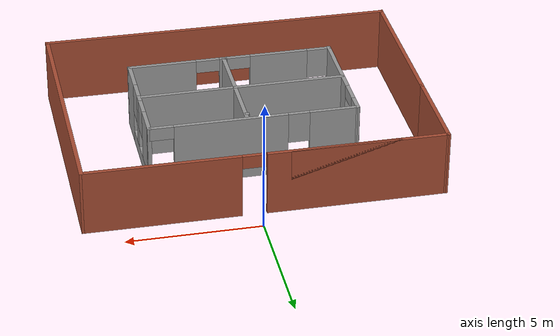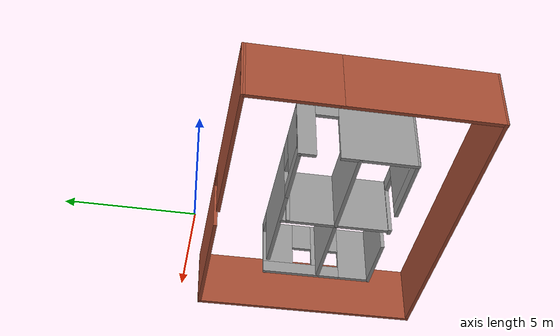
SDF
<?xml version='1.0'?>
<sdf version='1.6'>
  <model name='Building'>
    <pose frame=''>-0.30401 -5.55703 0 0 -0 0</pose>
    <link name='Wall_0'>
      <collision name='Wall_0_Collision'>
        <geometry>
          <box>
            <size>6.03913 0.15 2.5</size>
          </box>
        </geometry>
        <pose frame=''>0 0 1.25 0 -0 0</pose>
      </collision>
      <visual name='Wall_0_Visual'>
        <pose frame=''>0 0 1.25 0 -0 0</pose>
        <geometry>
          <box>
            <size>6.03913 0.15 2.5</size>
          </box>
        </geometry>
        <material>
          <script>
            <uri>file://media/materials/scripts/gazebo.material</uri>
            <name>Gazebo/Bricks</name>
          </script>
          <ambient>1 1 1 1</ambient>
        </material>
        <meta>
          <layer>0</layer>
        </meta>
      </visual>
      <pose frame=''>-6.63599 -1.70753 0 0 0 -1.5708</pose>
    </link>
    <link name='Wall_1'>
      <collision name='Wall_1_Collision'>
        <geometry>
          <box>
            <size>13.4097 0.15 2.5</size>
          </box>
        </geometry>
        <pose frame=''>0 0 1.25 0 -0 0</pose>
      </collision>
      <visual name='Wall_1_Visual'>
        <pose frame=''>0 0 1.25 0 -0 0</pose>
        <geometry>
          <box>
            <size>13.4097 0.15 2.5</size>
          </box>
        </geometry>
        <material>
          <script>
            <uri>file://media/materials/scripts/gazebo.material</uri>
            <name>Gazebo/Bricks</name>
          </script>
          <ambient>1 1 1 1</ambient>
        </material>
        <meta>
          <layer>0</layer>
        </meta>
      </visual>
      <pose frame=''>-0.006325 -4.68577 0 0 0 -0.007717</pose>
    </link>
    <link name='Wall_12'>
      <collision name='Wall_12_Collision'>
        <geometry>
          <box>
            <size>0.15 0.15 2.5</size>
          </box>
        </geometry>
        <pose frame=''>0 0 1.25 0 -0 0</pose>
      </collision>
      <visual name='Wall_12_Visual'>
        <pose frame=''>0 0 1.25 0 -0 0</pose>
        <geometry>
          <box>
            <size>0.15 0.15 2.5</size>
          </box>
        </geometry>
        <material>
          <script>
            <uri>file://media/materials/scripts/gazebo.material</uri>
            <name>Gazebo/Grey</name>
          </script>
          <ambient>1 1 1 1</ambient>
        </material>
        <meta>
          <layer>0</layer>
        </meta>
      </visual>
      <pose frame=''>0.155765 1.91213 0 0 -0 0</pose>
    </link>
    <link name='Wall_13'>
      <collision name='Wall_13_Collision'>
        <geometry>
          <box>
            <size>0.15 0.15 2.5</size>
          </box>
        </geometry>
        <pose frame=''>0 0 1.25 0 -0 0</pose>
      </collision>
      <visual name='Wall_13_Visual'>
        <pose frame=''>0 0 1.25 0 -0 0</pose>
        <geometry>
          <box>
            <size>0.15 0.15 2.5</size>
          </box>
        </geometry>
        <material>
          <script>
            <uri>file://media/materials/scripts/gazebo.material</uri>
            <name>Gazebo/Grey</name>
          </script>
          <ambient>1 1 1 1</ambient>
        </material>
        <meta>
          <layer>0</layer>
        </meta>
      </visual>
      <pose frame=''>0.155765 1.91213 0 0 -0 0</pose>
    </link>
    <link name='Wall_16'>
      <collision name='Wall_16_Collision'>
        <geometry>
          <box>
            <size>4.5 0.15 2.5</size>
          </box>
        </geometry>
        <pose frame=''>0 0 1.25 0 -0 0</pose>
      </collision>
      <visual name='Wall_16_Visual'>
        <pose frame=''>0 0 1.25 0 -0 0</pose>
        <geometry>
          <box>
            <size>4.5 0.15 2.5</size>
          </box>
        </geometry>
        <material>
          <script>
            <uri>file://media/materials/scripts/gazebo.material</uri>
            <name>Gazebo/Grey</name>
          </script>
          <ambient>1 1 1 1</ambient>
        </material>
        <meta>
          <layer>0</layer>
        </meta>
      </visual>
      <pose frame=''>0.209311 -0.044225 0 0 -0 1.5708</pose>
    </link>
    <link name='Wall_18'>
      <collision name='Wall_18_Collision'>
        <geometry>
          <box>
            <size>7.75 0.15 2.5</size>
          </box>
        </geometry>
        <pose frame=''>0 0 1.25 0 -0 0</pose>
      </collision>
      <visual name='Wall_18_Visual'>
        <pose frame=''>0 0 1.25 0 -0 0</pose>
        <geometry>
          <box>
            <size>7.75 0.15 2.5</size>
          </box>
        </geometry>
        <material>
          <script>
            <uri>file://media/materials/scripts/gazebo.material</uri>
            <name>Gazebo/Grey</name>
          </script>
          <ambient>1 1 1 1</ambient>
        </material>
        <meta>
          <layer>0</layer>
        </meta>
      </visual>
      <pose frame=''>-0.08044 -0.029696 0 0 -0 0</pose>
    </link>
    <link name='Wall_2'>
      <collision name='Wall_2_Collision'>
        <geometry>
          <box>
            <size>9.53913 0.15 2.5</size>
          </box>
        </geometry>
        <pose frame=''>0 0 1.25 0 -0 0</pose>
      </collision>
      <visual name='Wall_2_Visual'>
        <pose frame=''>0 0 1.25 0 -0 0</pose>
        <geometry>
          <box>
            <size>9.53913 0.15 2.5</size>
          </box>
        </geometry>
        <material>
          <script>
            <uri>file://media/materials/scripts/gazebo.material</uri>
            <name>Gazebo/Bricks</name>
          </script>
          <ambient>1 1 1 1</ambient>
        </material>
        <meta>
          <layer>0</layer>
        </meta>
      </visual>
      <pose frame=''>6.63657 -0.042371 0 0 -0 1.5708</pose>
    </link>
    <link name='Wall_3'>
      <pose frame=''>-0.006325 4.69461 0 0 -0 3.13519</pose>
      <visual name='Wall_3_Visual_0'>
        <pose frame=''>-3.80988 0 1.25 0 -0 0</pose>
        <geometry>
          <box>
            <size>5.78985 0.15 2.5</size>
          </box>
        </geometry>
        <material>
          <script>
            <uri>file://media/materials/scripts/gazebo.material</uri>
            <name>Gazebo/Bricks</name>
          </script>
          <ambient>1 1 1 1</ambient>
        </material>
        <meta>
          <layer>0</layer>
        </meta>
      </visual>
      <collision name='Wall_3_Collision_0'>
        <geometry>
          <box>
            <size>5.78985 0.15 2.5</size>
          </box>
        </geometry>
        <pose frame=''>-3.80988 0 1.25 0 -0 0</pose>
      </collision>
      <visual name='Wall_3_Visual_1'>
        <pose frame=''>3.34492 0 1.25 0 -0 0</pose>
        <geometry>
          <box>
            <size>6.71976 0.15 2.5</size>
          </box>
        </geometry>
        <material>
          <script>
            <uri>file://media/materials/scripts/gazebo.material</uri>
            <name>Gazebo/Bricks</name>
          </script>
          <ambient>1 1 1 1</ambient>
        </material>
        <meta>
          <layer>0</layer>
        </meta>
      </visual>
      <collision name='Wall_3_Collision_1'>
        <geometry>
          <box>
            <size>6.71976 0.15 2.5</size>
          </box>
        </geometry>
        <pose frame=''>3.34492 0 1.25 0 -0 0</pose>
      </collision>
      <visual name='Wall_3_Visual_2'>
        <pose frame=''>3.78107 0 1.25 0 -0 0</pose>
        <geometry>
          <box>
            <size>5.84745 0.15 2.5</size>
          </box>
        </geometry>
        <material>
          <script>
            <uri>file://media/materials/scripts/gazebo.material</uri>
            <name>Gazebo/Bricks</name>
          </script>
          <ambient>1 1 1 1</ambient>
        </material>
        <meta>
          <layer>0</layer>
        </meta>
      </visual>
      <collision name='Wall_3_Collision_2'>
        <geometry>
          <box>
            <size>5.84745 0.15 2.5</size>
          </box>
        </geometry>
        <pose frame=''>3.78107 0 1.25 0 -0 0</pose>
      </collision>
      <visual name='Wall_3_Visual_3'>
        <pose frame=''>-0.478802 0 2.25 0 -0 0</pose>
        <geometry>
          <box>
            <size>0.872303 0.15 0.5</size>
          </box>
        </geometry>
        <material>
          <script>
            <uri>file://media/materials/scripts/gazebo.material</uri>
            <name>Gazebo/Bricks</name>
          </script>
          <ambient>1 1 1 1</ambient>
        </material>
        <meta>
          <layer>0</layer>
        </meta>
      </visual>
      <collision name='Wall_3_Collision_3'>
        <geometry>
          <box>
            <size>0.872303 0.15 0.5</size>
          </box>
        </geometry>
        <pose frame=''>-0.478802 0 2.25 0 -0 0</pose>
      </collision>
    </link>
    <link name='Wall_4'>
      <collision name='Wall_4_Collision'>
        <geometry>
          <box>
            <size>3.65 0.15 2.5</size>
          </box>
        </geometry>
        <pose frame=''>0 0 1.25 0 -0 0</pose>
      </collision>
      <visual name='Wall_4_Visual'>
        <pose frame=''>0 0 1.25 0 -0 0</pose>
        <geometry>
          <box>
            <size>3.65 0.15 2.5</size>
          </box>
        </geometry>
        <material>
          <script>
            <uri>file://media/materials/scripts/gazebo.material</uri>
            <name>Gazebo/Bricks</name>
          </script>
          <ambient>1 1 1 1</ambient>
        </material>
        <meta>
          <layer>0</layer>
        </meta>
      </visual>
      <pose frame=''>-6.63599 2.98703 0 0 0 -1.5708</pose>
    </link>
    <link name='Wall_6'>
      <pose frame=''>-3.91336 -0.002529 0 0 0 -1.5708</pose>
      <visual name='Wall_6_Visual_0'>
        <pose frame=''>-1.95748 0 1.25 0 -0 0</pose>
        <geometry>
          <box>
            <size>0.710549 0.15 2.5</size>
          </box>
        </geometry>
        <material>
          <script>
            <uri>file://media/materials/scripts/gazebo.material</uri>
            <name>Gazebo/Grey</name>
          </script>
          <ambient>1 1 1 1</ambient>
        </material>
        <meta>
          <layer>0</layer>
        </meta>
      </visual>
      <collision name='Wall_6_Collision_0'>
        <geometry>
          <box>
            <size>0.710549 0.15 2.5</size>
          </box>
        </geometry>
        <pose frame=''>-1.95748 0 1.25 0 -0 0</pose>
      </collision>
      <visual name='Wall_6_Visual_1'>
        <pose frame=''>0.805274 0 1.25 0 -0 0</pose>
        <geometry>
          <box>
            <size>3.01495 0.15 2.5</size>
          </box>
        </geometry>
        <material>
          <script>
            <uri>file://media/materials/scripts/gazebo.material</uri>
            <name>Gazebo/Grey</name>
          </script>
          <ambient>1 1 1 1</ambient>
        </material>
        <meta>
          <layer>0</layer>
        </meta>
      </visual>
      <collision name='Wall_6_Collision_1'>
        <geometry>
          <box>
            <size>3.01495 0.15 2.5</size>
          </box>
        </geometry>
        <pose frame=''>0.805274 0 1.25 0 -0 0</pose>
      </collision>
      <visual name='Wall_6_Visual_2'>
        <pose frame=''>-1.1522 0 2.25 0 -0 0</pose>
        <geometry>
          <box>
            <size>0.9 0.15 0.5</size>
          </box>
        </geometry>
        <material>
          <script>
            <uri>file://media/materials/scripts/gazebo.material</uri>
            <name>Gazebo/Grey</name>
          </script>
          <ambient>1 1 1 1</ambient>
        </material>
        <meta>
          <layer>0</layer>
        </meta>
      </visual>
      <collision name='Wall_6_Collision_2'>
        <geometry>
          <box>
            <size>0.9 0.15 0.5</size>
          </box>
        </geometry>
        <pose frame=''>-1.1522 0 2.25 0 -0 0</pose>
      </collision>
    </link>
    <link name='Wall_7'>
      <pose frame=''>-0.04296 -2.23022 0 0 0 -0.002598</pose>
      <visual name='Wall_7_Visual_0'>
        <pose frame=''>-3.87288 0 1.25 0 -0 0</pose>
        <geometry>
          <box>
            <size>0.145062 0.15 2.5</size>
          </box>
        </geometry>
        <material>
          <script>
            <uri>file://media/materials/scripts/gazebo.material</uri>
            <name>Gazebo/Grey</name>
          </script>
          <ambient>1 1 1 1</ambient>
        </material>
        <meta>
          <layer>0</layer>
        </meta>
      </visual>
      <collision name='Wall_7_Collision_0'>
        <geometry>
          <box>
            <size>0.145062 0.15 2.5</size>
          </box>
        </geometry>
        <pose frame=''>-3.87288 0 1.25 0 -0 0</pose>
      </collision>
      <visual name='Wall_7_Visual_1'>
        <pose frame=''>0.276 0 1.25 0 -0 0</pose>
        <geometry>
          <box>
            <size>0.29028 0.15 2.5</size>
          </box>
        </geometry>
        <material>
          <script>
            <uri>file://media/materials/scripts/gazebo.material</uri>
            <name>Gazebo/Grey</name>
          </script>
          <ambient>1 1 1 1</ambient>
        </material>
        <meta>
          <layer>0</layer>
        </meta>
      </visual>
      <collision name='Wall_7_Collision_1'>
        <geometry>
          <box>
            <size>0.29028 0.15 2.5</size>
          </box>
        </geometry>
        <pose frame=''>0.276 0 1.25 0 -0 0</pose>
      </collision>
      <visual name='Wall_7_Visual_2'>
        <pose frame=''>2.63327 0 1.25 0 -0 0</pose>
        <geometry>
          <box>
            <size>2.62427 0.15 2.5</size>
          </box>
        </geometry>
        <material>
          <script>
            <uri>file://media/materials/scripts/gazebo.material</uri>
            <name>Gazebo/Grey</name>
          </script>
          <ambient>1 1 1 1</ambient>
        </material>
        <meta>
          <layer>0</layer>
        </meta>
      </visual>
      <collision name='Wall_7_Collision_2'>
        <geometry>
          <box>
            <size>2.62427 0.15 2.5</size>
          </box>
        </geometry>
        <pose frame=''>2.63327 0 1.25 0 -0 0</pose>
      </collision>
      <visual name='Wall_7_Visual_3'>
        <pose frame=''>-2.28475 0 0.25 0 -0 0</pose>
        <geometry>
          <box>
            <size>3.03121 0.15 0.5</size>
          </box>
        </geometry>
        <material>
          <script>
            <uri>file://media/materials/scripts/gazebo.material</uri>
            <name>Gazebo/Grey</name>
          </script>
          <ambient>1 1 1 1</ambient>
        </material>
        <meta>
          <layer>0</layer>
        </meta>
      </visual>
      <collision name='Wall_7_Collision_3'>
        <geometry>
          <box>
            <size>3.03121 0.15 0.5</size>
          </box>
        </geometry>
        <pose frame=''>-2.28475 0 0.25 0 -0 0</pose>
      </collision>
      <visual name='Wall_7_Visual_4'>
        <pose frame=''>-1.88474 0 1.5 0 -0 0</pose>
        <geometry>
          <box>
            <size>2.23121 0.15 2</size>
          </box>
        </geometry>
        <material>
          <script>
            <uri>file://media/materials/scripts/gazebo.material</uri>
            <name>Gazebo/Grey</name>
          </script>
          <ambient>1 1 1 1</ambient>
        </material>
        <meta>
          <layer>0</layer>
        </meta>
      </visual>
      <collision name='Wall_7_Collision_4'>
        <geometry>
          <box>
            <size>2.23121 0.15 2</size>
          </box>
        </geometry>
        <pose frame=''>-1.88474 0 1.5 0 -0 0</pose>
      </collision>
      <visual name='Wall_7_Visual_5'>
        <pose frame=''>-3.40035 0 1.9 0 -0 0</pose>
        <geometry>
          <box>
            <size>0.8 0.15 1.2</size>
          </box>
        </geometry>
        <material>
          <script>
            <uri>file://media/materials/scripts/gazebo.material</uri>
            <name>Gazebo/Grey</name>
          </script>
          <ambient>1 1 1 1</ambient>
        </material>
        <meta>
          <layer>0</layer>
        </meta>
      </visual>
      <collision name='Wall_7_Collision_5'>
        <geometry>
          <box>
            <size>0.8 0.15 1.2</size>
          </box>
        </geometry>
        <pose frame=''>-3.40035 0 1.9 0 -0 0</pose>
      </collision>
      <visual name='Wall_7_Visual_6'>
        <pose frame=''>0.87114 0 2.25 0 -0 0</pose>
        <geometry>
          <box>
            <size>0.9 0.15 0.5</size>
          </box>
        </geometry>
        <material>
          <script>
            <uri>file://media/materials/scripts/gazebo.material</uri>
            <name>Gazebo/Grey</name>
          </script>
          <ambient>1 1 1 1</ambient>
        </material>
        <meta>
          <layer>0</layer>
        </meta>
      </visual>
      <collision name='Wall_7_Collision_6'>
        <geometry>
          <box>
            <size>0.9 0.15 0.5</size>
          </box>
        </geometry>
        <pose frame=''>0.87114 0 2.25 0 -0 0</pose>
      </collision>
      <visual name='Wall_7_Visual_7'>
        <pose frame=''>-0.31914 0 2.25 0 -0 0</pose>
        <geometry>
          <box>
            <size>0.9 0.15 0.5</size>
          </box>
        </geometry>
        <material>
          <script>
            <uri>file://media/materials/scripts/gazebo.material</uri>
            <name>Gazebo/Grey</name>
          </script>
          <ambient>1 1 1 1</ambient>
        </material>
        <meta>
          <layer>0</layer>
        </meta>
      </visual>
      <collision name='Wall_7_Collision_7'>
        <geometry>
          <box>
            <size>0.9 0.15 0.5</size>
          </box>
        </geometry>
        <pose frame=''>-0.31914 0 2.25 0 -0 0</pose>
      </collision>
    </link>
    <link name='Wall_8'>
      <pose frame=''>3.82744 -0.002529 0 0 -0 1.5708</pose>
      <visual name='Wall_8_Visual_0'>
        <pose frame=''>-1.61662 0 1.25 0 -0 0</pose>
        <geometry>
          <box>
            <size>1.35204 0.15 2.5</size>
          </box>
        </geometry>
        <material>
          <script>
            <uri>file://media/materials/scripts/gazebo.material</uri>
            <name>Gazebo/Grey</name>
          </script>
          <ambient>1 1 1 1</ambient>
        </material>
        <meta>
          <layer>0</layer>
        </meta>
      </visual>
      <collision name='Wall_8_Collision_0'>
        <geometry>
          <box>
            <size>1.35204 0.15 2.5</size>
          </box>
        </geometry>
        <pose frame=''>-1.61662 0 1.25 0 -0 0</pose>
      </collision>
      <visual name='Wall_8_Visual_1'>
        <pose frame=''>0.676019 0 0.25 0 -0 0</pose>
        <geometry>
          <box>
            <size>3.23324 0.15 0.5</size>
          </box>
        </geometry>
        <material>
          <script>
            <uri>file://media/materials/scripts/gazebo.material</uri>
            <name>Gazebo/Grey</name>
          </script>
          <ambient>1 1 1 1</ambient>
        </material>
        <meta>
          <layer>0</layer>
        </meta>
      </visual>
      <collision name='Wall_8_Collision_1'>
        <geometry>
          <box>
            <size>3.23324 0.15 0.5</size>
          </box>
        </geometry>
        <pose frame=''>0.676019 0 0.25 0 -0 0</pose>
      </collision>
      <visual name='Wall_8_Visual_2'>
        <pose frame=''>0.041301 0 1.5 0 -0 0</pose>
        <geometry>
          <box>
            <size>0.3638 0.15 2</size>
          </box>
        </geometry>
        <material>
          <script>
            <uri>file://media/materials/scripts/gazebo.material</uri>
            <name>Gazebo/Grey</name>
          </script>
          <ambient>1 1 1 1</ambient>
        </material>
        <meta>
          <layer>0</layer>
        </meta>
      </visual>
      <collision name='Wall_8_Collision_2'>
        <geometry>
          <box>
            <size>0.3638 0.15 2</size>
          </box>
        </geometry>
        <pose frame=''>0.041301 0 1.5 0 -0 0</pose>
      </collision>
      <visual name='Wall_8_Visual_3'>
        <pose frame=''>1.65792 0 1.5 0 -0 0</pose>
        <geometry>
          <box>
            <size>1.26944 0.15 2</size>
          </box>
        </geometry>
        <material>
          <script>
            <uri>file://media/materials/scripts/gazebo.material</uri>
            <name>Gazebo/Grey</name>
          </script>
          <ambient>1 1 1 1</ambient>
        </material>
        <meta>
          <layer>0</layer>
        </meta>
      </visual>
      <collision name='Wall_8_Collision_3'>
        <geometry>
          <box>
            <size>1.26944 0.15 2</size>
          </box>
        </geometry>
        <pose frame=''>1.65792 0 1.5 0 -0 0</pose>
      </collision>
      <visual name='Wall_8_Visual_4'>
        <pose frame=''>-0.540598 0 1.9 0 -0 0</pose>
        <geometry>
          <box>
            <size>0.8 0.15 1.2</size>
          </box>
        </geometry>
        <material>
          <script>
            <uri>file://media/materials/scripts/gazebo.material</uri>
            <name>Gazebo/Grey</name>
          </script>
          <ambient>1 1 1 1</ambient>
        </material>
        <meta>
          <layer>0</layer>
        </meta>
      </visual>
      <collision name='Wall_8_Collision_4'>
        <geometry>
          <box>
            <size>0.8 0.15 1.2</size>
          </box>
        </geometry>
        <pose frame=''>-0.540598 0 1.9 0 -0 0</pose>
      </collision>
      <visual name='Wall_8_Visual_5'>
        <pose frame=''>0.623201 0 1.9 0 -0 0</pose>
        <geometry>
          <box>
            <size>0.8 0.15 1.2</size>
          </box>
        </geometry>
        <material>
          <script>
            <uri>file://media/materials/scripts/gazebo.material</uri>
            <name>Gazebo/Grey</name>
          </script>
          <ambient>1 1 1 1</ambient>
        </material>
        <meta>
          <layer>0</layer>
        </meta>
      </visual>
      <collision name='Wall_8_Collision_5'>
        <geometry>
          <box>
            <size>0.8 0.15 1.2</size>
          </box>
        </geometry>
        <pose frame=''>0.623201 0 1.9 0 -0 0</pose>
      </collision>
    </link>
    <link name='Wall_9'>
      <pose frame=''>-0.035398 2.22516 0 0 -0 3.13899</pose>
      <visual name='Wall_9_Visual_0'>
        <pose frame=''>-3.90573 0 1.25 0 -0 0</pose>
        <geometry>
          <box>
            <size>0.079351 0.15 2.5</size>
          </box>
        </geometry>
        <material>
          <script>
            <uri>file://media/materials/scripts/gazebo.material</uri>
            <name>Gazebo/Grey</name>
          </script>
          <ambient>1 1 1 1</ambient>
        </material>
        <meta>
          <layer>0</layer>
        </meta>
      </visual>
      <collision name='Wall_9_Collision_0'>
        <geometry>
          <box>
            <size>0.079351 0.15 2.5</size>
          </box>
        </geometry>
        <pose frame=''>-3.90573 0 1.25 0 -0 0</pose>
      </collision>
      <visual name='Wall_9_Visual_1'>
        <pose frame=''>-0.845033 0 1.25 0 -0 0</pose>
        <geometry>
          <box>
            <size>4.24205 0.15 2.5</size>
          </box>
        </geometry>
        <material>
          <script>
            <uri>file://media/materials/scripts/gazebo.material</uri>
            <name>Gazebo/Grey</name>
          </script>
          <ambient>1 1 1 1</ambient>
        </material>
        <meta>
          <layer>0</layer>
        </meta>
      </visual>
      <collision name='Wall_9_Collision_1'>
        <geometry>
          <box>
            <size>4.24205 0.15 2.5</size>
          </box>
        </geometry>
        <pose frame=''>-0.845033 0 1.25 0 -0 0</pose>
      </collision>
      <visual name='Wall_9_Visual_2'>
        <pose frame=''>2.6107 0 0.25 0 -0 0</pose>
        <geometry>
          <box>
            <size>2.66942 0.15 0.5</size>
          </box>
        </geometry>
        <material>
          <script>
            <uri>file://media/materials/scripts/gazebo.material</uri>
            <name>Gazebo/Grey</name>
          </script>
          <ambient>1 1 1 1</ambient>
        </material>
        <meta>
          <layer>0</layer>
        </meta>
      </visual>
      <collision name='Wall_9_Collision_2'>
        <geometry>
          <box>
            <size>2.66942 0.15 0.5</size>
          </box>
        </geometry>
        <pose frame=''>2.6107 0 0.25 0 -0 0</pose>
      </collision>
      <visual name='Wall_9_Visual_3'>
        <pose frame=''>3.0107 0 1.5 0 -0 0</pose>
        <geometry>
          <box>
            <size>1.86942 0.15 2</size>
          </box>
        </geometry>
        <material>
          <script>
            <uri>file://media/materials/scripts/gazebo.material</uri>
            <name>Gazebo/Grey</name>
          </script>
          <ambient>1 1 1 1</ambient>
        </material>
        <meta>
          <layer>0</layer>
        </meta>
      </visual>
      <collision name='Wall_9_Collision_3'>
        <geometry>
          <box>
            <size>1.86942 0.15 2</size>
          </box>
        </geometry>
        <pose frame=''>3.0107 0 1.5 0 -0 0</pose>
      </collision>
      <visual name='Wall_9_Visual_4'>
        <pose frame=''>1.67599 0 1.9 0 -0 0</pose>
        <geometry>
          <box>
            <size>0.8 0.15 1.2</size>
          </box>
        </geometry>
        <material>
          <script>
            <uri>file://media/materials/scripts/gazebo.material</uri>
            <name>Gazebo/Grey</name>
          </script>
          <ambient>1 1 1 1</ambient>
        </material>
        <meta>
          <layer>0</layer>
        </meta>
      </visual>
      <collision name='Wall_9_Collision_4'>
        <geometry>
          <box>
            <size>0.8 0.15 1.2</size>
          </box>
        </geometry>
        <pose frame=''>1.67599 0 1.9 0 -0 0</pose>
      </collision>
      <visual name='Wall_9_Visual_5'>
        <pose frame=''>-3.41606 0 2.25 0 -0 0</pose>
        <geometry>
          <box>
            <size>0.9 0.15 0.5</size>
          </box>
        </geometry>
        <material>
          <script>
            <uri>file://media/materials/scripts/gazebo.material</uri>
            <name>Gazebo/Grey</name>
          </script>
          <ambient>1 1 1 1</ambient>
        </material>
        <meta>
          <layer>0</layer>
        </meta>
      </visual>
      <collision name='Wall_9_Collision_5'>
        <geometry>
          <box>
            <size>0.9 0.15 0.5</size>
          </box>
        </geometry>
        <pose frame=''>-3.41606 0 2.25 0 -0 0</pose>
      </collision>
    </link>
    <static>1</static>
  </model>
</sdf>
